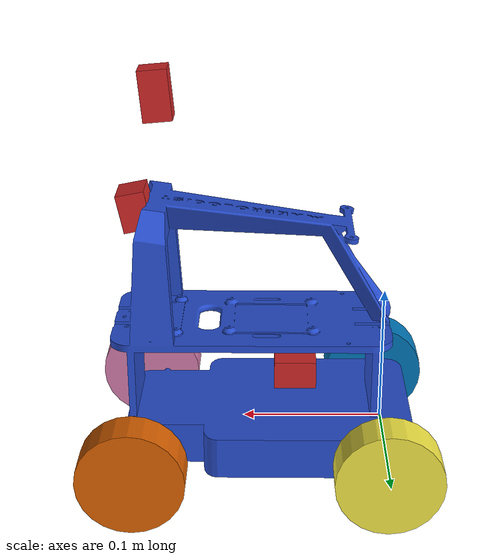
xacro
<?xml version="1.0"?>
<robot name="donkey" xmlns:xacro="http://www.ros.org/wiki/xacro">

  <xacro:include filename="$(find donkey_description)/urdf/donkey_macros.xacro" />

  <!-- Add chassis and it's inertia link -->

  <link name="base_footprint" />

  <link name="base_link" />

  <link name="chassis">
    <visual>
      <xacro:chassis_geometry/>
      <material name="blue" />
    </visual>
    <inertial>
      <xacro:chassis_inertial_params />
    </inertial>
  </link>

  <!-- Wheel Links -->

  <link name="left_rear_wheel">
    <inertial>
      <origin rpy="0 0 0" xyz="0 0 -0.0225"/>
      <mass value="0.34"/>
      <inertia ixx="0.00026046" ixy="0" ixz="0" iyy="0.00026046" iyz="0" izz="0.00041226"/>
    </inertial>
    <visual>
      <origin rpy="0 0 0" xyz="0 0 0"/>
      <geometry>
        <cylinder length="0.028" radius="0.0375"/>
      </geometry>
    </visual>
    <collision>
      <origin rpy="0 0 0" xyz="0 0 -0.0225"/>
      <geometry>
        <cylinder length="0.028" radius="0.0375"/>
      </geometry>
    </collision>
  </link>

  <link name="right_rear_wheel">
    <inertial>
      <origin rpy="0 0 0" xyz="0 0 0.0225"/>
      <mass value="0.34"/>
      <inertia ixx="0.00026046" ixy="0" ixz="0" iyy="0.00026046" iyz="0" izz="0.00041226"/>
    </inertial>
    <visual>
      <origin rpy="0 0 0" xyz="0 0 0"/>
      <geometry>
        <cylinder length="0.028" radius="0.0375"/>
      </geometry>
    </visual>
    <collision>
      <origin rpy="0 0 0" xyz="0 0 0.0225"/>
      <geometry>
        <cylinder length="0.028" radius="0.0375"/>
      </geometry>
    </collision>
  </link>

  <link name="left_front_wheel">
    <inertial>
      <origin rpy="0 0 0" xyz="0 0 -0.0225"/>
      <mass value="0.34055"/>
      <inertia ixx="0.00026046" ixy="0" ixz="0" iyy="0.00026046" iyz="0" izz="0.00041226"/>
    </inertial>
    <visual>
      <origin rpy="0 0 0" xyz="0 0 0"/>
      <geometry>
        <cylinder length="0.028" radius="0.0375"/>
      </geometry>
    </visual>
    <collision>
      <origin rpy="0 0 0" xyz="0 0 -0.0225"/>
      <geometry>
        <cylinder length="0.028" radius="0.0375"/>
      </geometry>
    </collision>
  </link>

  <link name="right_front_wheel">
    <inertial>
      <origin rpy="0 0 0" xyz="0 0 0.0225"/>
      <mass value="0.34055"/>
      <inertia ixx="0.00026046" ixy="0" ixz="0" iyy="0.00026046" iyz="0" izz="0.00041226"/>
    </inertial>
    <visual>
      <origin rpy="0 0 0" xyz="0 0 0"/>
      <geometry>
        <cylinder length="0.028" radius="0.0375"/>
      </geometry>
    </visual>
    <collision>
      <origin rpy="0 0 0" xyz="0 0 0.0225"/>
      <geometry>
        <cylinder length="0.028" radius="0.0375"/>
      </geometry>
    </collision>
  </link>

  <!-- Steering pin links -->

  <link name="left_steering_hinge">
    <inertial>
      <origin rpy="0 0 0" xyz="0 0 0"/>
      <mass value="0.050"/>
      <inertia ixx="4E-06" ixy="0" ixz="0" iyy="4E-06" iyz="0" izz="4E-06"/>
    </inertial>
  </link>

  <link name="right_steering_hinge">
    <inertial>
      <origin rpy="0 0 0" xyz="0 0 0"/>
      <mass value="0.100"/>
      <inertia ixx="4E-06" ixy="0" ixz="0" iyy="4E-06" iyz="0" izz="4E-06"/>
    </inertial>
   </link>

  <!-- Sensors -->

  <link name="raspicam">
    <inertial>
      <mass value="1e-5" />
      <origin xyz="0 0 0" rpy="0 0 0"/>
      <inertia ixx="1e-6" ixy="0" ixz="0" iyy="1e-6" iyz="0" izz="1e-6" />
    </inertial>
    <collision>
      <origin xyz="0 0 0" rpy="0 0 0"/>
      <geometry>
        <box size="0.020 0.027 0.027"/>
      </geometry>
    </collision>
    <visual>
      <origin xyz="0 0 0" rpy="0 0 0"/>
      <geometry>
        <box size="0.020 0.027 0.027"/>
      </geometry>
      <material name="red"/>
    </visual>
  </link>

  <link name="imu">
    <inertial>
      <mass value="1e-5" />
      <origin xyz="0 0 0" rpy="0 0 0"/>
      <inertia ixx="1e-6" ixy="0" ixz="0" iyy="1e-6" iyz="0" izz="1e-6" />
    </inertial>
    <collision>
      <origin xyz="0 0 0" rpy="0 0 0"/>
      <geometry>
        <box size="0.030 0.025 0.020"/>
      </geometry>
    </collision>
    <visual>
      <origin xyz="0 0 0" rpy="0 0 0"/>
      <geometry>
        <box size="0.030 0.025 0.020"/>
      </geometry>
      <material name="red"/>
    </visual>
  </link>

  <link name="tfmini">
    <inertial>
      <mass value="1e-5" />
      <origin xyz="0 0 0" rpy="0 0 0"/>
      <inertia ixx="1e-6" ixy="0" ixz="0" iyy="1e-6" iyz="0" izz="1e-6" />
    </inertial>
    <collision>
      <origin xyz="0 0 0" rpy="0 0 0"/>
      <geometry>
        <box size="0.020 0.019 0.035"/>
      </geometry>
    </collision>
    <visual>
      <origin xyz="0 0 0" rpy="0 0 0"/>
      <geometry>
        <box size="0.020 0.019 0.035"/>
      </geometry>
      <material name="red"/>
    </visual>
  </link>

  <!-- Joints  -->

  <joint name="base_footprint_joint" type="fixed">
    <origin xyz="0 0 -0.036" rpy="0 0 0" />
    <parent link="base_link" />
    <child link="base_footprint" />
  </joint>

  <joint name="base_link_joint" type="fixed">
    <origin xyz="0 0 0.0" rpy="0 0 0" />
    <parent link="base_link" />
    <child link="chassis" />
  </joint>

  <!-- Add the left rear wheel with its joints and tranmissions -->

  <joint name="left_rear_wheel_joint" type="continuous">
    <origin rpy="1.5708 0 0" xyz="0 0.084 0"/>
    <parent link="chassis"/>
    <child link="left_rear_wheel"/>
    <axis xyz="0 0 -1"/>
    <limit effort="10" velocity="100"/>
  </joint>

  <joint name="right_rear_wheel_joint" type="continuous">
    <origin rpy="1.5708 0 0" xyz="0 -0.084 0"/>
    <parent link="chassis"/>
    <child link="right_rear_wheel"/>
    <axis xyz="0 0 -1"/>
    <limit effort="10" velocity="100"/>
  </joint>

  <joint name="left_steering_hinge_joint" type="revolute">
    <origin rpy="0 1.5708 0" xyz="0.175 0.084 0"/>
    <parent link="chassis"/>
    <child link="left_steering_hinge"/>
    <axis xyz="-1 0 0"/>
    <limit effort="10" lower="-1.0" upper="1.0" velocity="100"/>
  </joint>

  <joint name="right_steering_hinge_joint" type="continuous">
    <origin rpy="0 1.5708 0" xyz="0.175 -0.084 0"/>
    <parent link="chassis"/>
    <child link="right_steering_hinge"/>
    <axis xyz="-1 0 0"/>
    <limit effort="10" lower="-1.0" upper="1.0" velocity="100"/>
  </joint>

  <joint name="left_front_wheel_joint" type="continuous">
    <origin rpy="1.5708 0 0" xyz="0 0 0"/>
    <parent link="left_steering_hinge"/>
    <child link="left_front_wheel"/>
    <axis xyz="0 0 -1"/>
    <limit effort="10" velocity="100"/>
  </joint>

  <joint name="right_front_wheel_joint" type="continuous">
    <origin rpy="1.5708 0 0" xyz="0 0 0"/>
    <parent link="right_steering_hinge"/>
    <child link="right_front_wheel"/>
    <axis xyz="0 0 -1"/>
    <limit effort="10" velocity="100"/>
  </joint>

  <!-- Sensor Joints, # extrinsics need to be refined -->

  <joint name="raspicam_joint" type="fixed">
    <origin xyz="0.174 0 0.163" rpy="0 0.20 0"/>
    <parent link="chassis"/>
    <child link="raspicam"/>
    <axis xyz="0 0 1" />
  </joint>

  <link name="camera_link">
    <inertial>
      <mass value="1e-5" />
      <origin xyz="0 0 0" rpy="0 0 0"/>
      <inertia ixx="1e-6" ixy="0" ixz="0" iyy="1e-6" iyz="0" izz="1e-6" />
    </inertial>
  </link>

  <joint name="camera_joint" type="fixed">
    <origin xyz="0 0.06 0" rpy="0 0 0"/>
    <parent link="raspicam"/>
    <child link="camera_link"/>
    <axis xyz="0 0 1" />
  </joint>

  <joint name="imu_joint" type="fixed">
    <origin xyz="0.063 0 0.039" rpy="0 0 0"/>
    <parent link="chassis"/>
    <child link="imu"/>
    <axis xyz="0 0 1" />
  </joint>

  <joint name="tfmini_joint" type="fixed">
    <origin xyz="0.1574 0 0.2425" rpy="3.142 0.087 0"/>
    <parent link="chassis"/>
    <child link="tfmini"/>
    <axis xyz="0 0 1" />
  </joint>

</robot>

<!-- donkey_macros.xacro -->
<robot name="donkey" xmlns:xacro="http://www.ros.org/wiki/xacro">

<!-- inertial parameter macros -->

<xacro:macro name="chassis_inertial_params">
  <origin xyz="0.0875 0 0.025" rpy="0 0 0" />
  <mass value="0.8" />
  <inertia ixx="0.004609" ixy="0"          ixz="0"
                          iyy="0.006409"   iyz="0"
                                           izz="0.01065" />
</xacro:macro>

<xacro:macro name="left_wheels_inertial_params">
  <origin xyz="0 0 -0.0225" rpy="0 0 0" />
  <mass value="0.07" />
  <inertia ixx="0.00026046" ixy="0"          ixz="0"
                            iyy="0.00026046" iyz="0"
                                             izz="0.00041226" />
</xacro:macro>

<xacro:macro name="right_wheels_inertial_params">
  <origin xyz="0 0 0.0225" rpy="0 0 0" />
  <mass value="0.07" />
  <inertia ixx="0.00026046" ixy="0"          ixz="0"
                            iyy="0.00026046" iyz="0"
                                             izz="0.00041226" />
</xacro:macro>

<xacro:macro name="steering_hinge_inertial_params">
  <origin xyz="0 0 0" rpy="0 0 0" />
  <mass value="0.100" />
  <inertia ixx="4E-06" ixy="0"           ixz="0"
                            iyy="4E-06"  iyz="0"
                                              izz="4E-06" />
</xacro:macro>

<xacro:macro name="hokuyo_inertial_params">
  <origin xyz="0 0 0" rpy="0 0 0" />
  <mass value="0.130" />
  <inertia ixx="4E-06" ixy="0"           ixz="0"
                            iyy="4E-06"  iyz="0"
                                              izz="4E-06" />
</xacro:macro>

<!-- geometry macros -->

<xacro:macro name="chassis_geometry">
  <origin xyz="0 0 0" rpy="0 0 0" />
  <geometry>
    <mesh filename="package://donkey_description/meshes/chassis_assembled.dae" scale="1 1 1"/>
  </geometry>
</xacro:macro>

<xacro:macro name="roll_cage_geometry">
  <origin xyz="0 0 0" rpy="0 3.26 3.14" />
  <geometry>
    <mesh filename="package://donkey_description/meshes/MO3D_DerbyBot_RollCage_WithWing_v2.stl" scale="0.001 0.001 0.001"/>
  </geometry>
</xacro:macro>

<xacro:macro name="left_rear_wheel_geometry">
  <origin xyz="0 0 0" rpy="0 0 0" />
  <geometry>
    <mesh filename="package://donkey_description/meshes/left_rear_wheel.STL" />
  </geometry>
</xacro:macro>

<xacro:macro name="right_rear_wheel_geometry">
  <origin xyz="0 0 0" rpy="0 0 0" />
  <geometry>
    <mesh filename="package://donkey_description/meshes/right_rear_wheel.STL" />
  </geometry>
</xacro:macro>

<xacro:macro name="left_front_wheel_geometry">
  <origin xyz="0 0 0" rpy="0 0 0" />
  <geometry>
    <mesh filename="package://donkey_description/meshes/left_front_wheel.STL" />
  </geometry>
</xacro:macro>

<xacro:macro name="right_front_wheel_geometry">
  <origin xyz="0 0 0" rpy="0 0 0" />
  <geometry>
    <mesh filename="package://donkey_description/meshes/right_front_wheel.STL" />
  </geometry>
</xacro:macro>

<xacro:macro name="left_steering_hinge_geometry">
  <origin xyz="0 0 0" rpy="0 0 0" />
  <geometry>
    <mesh filename="package://donkey_description/meshes/left_steering_hinge.STL" />
  </geometry>
</xacro:macro>

<xacro:macro name="right_steering_hinge_geometry">
  <origin xyz="0 0 0" rpy="0 0 0" />
  <geometry>
    <mesh filename="package://donkey_description/meshes/right_steering_hinge.STL" />
  </geometry>
</xacro:macro>

<xacro:macro name="left_wheels_collision_geometry">
  <origin xyz="0 0 -0.0225" rpy="0 0 0" />
  <geometry>
    <cylinder length="0.045" radius="0.05" />
  </geometry>
</xacro:macro>

<xacro:macro name="right_wheels_collision_geometry">
  <origin xyz="0 0 0.0225" rpy="0 0 0" />
  <geometry>
    <cylinder length="0.045" radius="0.05" />
  </geometry>
</xacro:macro>

<!-- transmission macros -->

<xacro:macro name="wheel_transmission" params="name">
  <transmission name="${name}_transmission" type="SimpleTransmission">
    <type>transmission_interface/SimpleTransmission</type>
    <joint name="${name}_joint">
      <hardwareInterface>hardware_interface/EffortJointInterface</hardwareInterface>
    </joint>
    <actuator name="${name}_motor">
      <hardwareInterface>hardware_interface/EffortJointInterface</hardwareInterface>
      <mechanicalReduction>1</mechanicalReduction>
    </actuator>
  </transmission>
</xacro:macro>

<xacro:macro name="steering_hinge_transmission" params="name">
  <transmission name="${name}_transmission" type="SimpleTransmission">
    <type>transmission_interface/SimpleTransmission</type>
    <joint name="${name}_joint">
      <hardwareInterface>hardware_interface/EffortJointInterface</hardwareInterface>
    </joint>
    <actuator name="${name}_motor">
      <hardwareInterface>hardware_interface/EffortJointInterface</hardwareInterface>
      <mechanicalReduction>1</mechanicalReduction>
    </actuator>
  </transmission>
</xacro:macro>

</robot>
